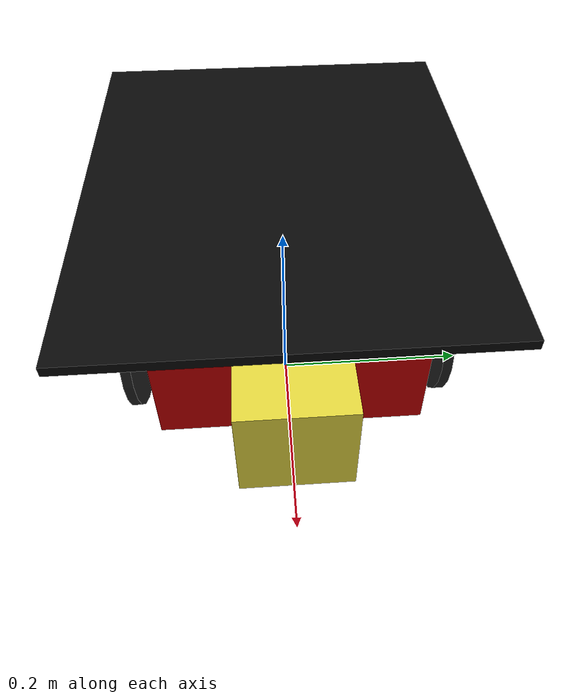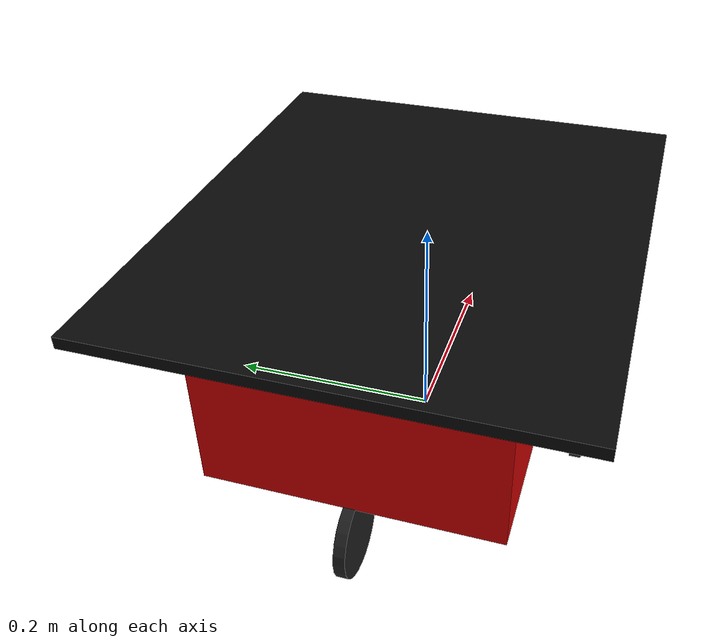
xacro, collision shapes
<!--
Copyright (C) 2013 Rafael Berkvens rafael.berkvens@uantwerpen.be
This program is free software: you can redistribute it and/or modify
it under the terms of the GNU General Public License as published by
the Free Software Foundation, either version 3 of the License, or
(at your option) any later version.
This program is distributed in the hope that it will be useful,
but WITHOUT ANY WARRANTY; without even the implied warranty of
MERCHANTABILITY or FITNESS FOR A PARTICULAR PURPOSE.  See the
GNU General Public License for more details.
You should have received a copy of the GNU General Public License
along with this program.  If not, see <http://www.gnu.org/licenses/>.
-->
<?xml version="1.0"?>

<robot name="pioneer3dx" xmlns:xacro="http://wiki.ros.org/xacro">

<!-- import the pioneer 3dx's wheels -->
<xacro:include filename="$(find p3dx_description)/urdf/pioneer3dx_wheel.xacro" />

<!-- import all gazebo-customization elements, including gazebo colors -->
<xacro:include filename="$(find p3dx_description)/urdf/pioneer3dx.gazebo" />

<!-- import materials to add color to the pioneer in rviz -->
<xacro:include filename="$(find p3dx_description)/urdf/materials.xacro" />

<!-- chassis -->
<link name="base_link">
    <visual>
        <origin xyz="-0.045 0 0.148" rpy="0 0 0" />
        <geometry name="pioneer_geom">
            <mesh filename="package://p3dx_description/meshes/chassis.stl" />
        </geometry>
        <material name="ChassisRed"/>
    </visual>

    <collision>
        <origin xyz="-0.045 0 0.145" rpy="0 0 0" />
        <geometry>
            <box size="0.35 0.25 0.14" />
        </geometry>
    </collision>

</link>
<link name="base_link_dummy">
    <inertial>
        <mass value="3.5" />
        <origin xyz="-0.05 0 0" />
        <inertia ixx="1" ixy="0" ixz="0" iyy="1" iyz="0" izz="1" />
    </inertial>
</link>

<joint name="base_link_inertial_joint" type="fixed">
    <origin xyz="0 0 0" rpy="0 0 0" />
    <parent link="base_link" />
    <child link="base_link_dummy" />
</joint>

<!-- top_plate -->
<link name="top_plate">
    <visual>
        <origin xyz="0 0 0" rpy="0 0 0" />
        <geometry name="top_geom">
            <mesh filename="package://p3dx_description/meshes/top.stl" />
        </geometry>
        <material name="TopBlack"/>
    </visual>

    <collision>
        <origin xyz="0.0 0 0" rpy="0 0 0" />
        <geometry name="pioneer_geom">
            <box size="0.45 0.38 0.01" />
        </geometry>
    </collision>

    <inertial>
        <mass value="0.01" />
        <origin xyz="0 0 0" />
        <inertia ixx="1" ixy="0" ixz="0" iyy="1" iyz="0" izz="1" />
    </inertial>
</link>

<joint name="base_top_joint" type="fixed">
    <origin xyz="-0.045 0 0.234" rpy="0 0 0" />
    <parent link="base_link" />
    <child link="top_plate" />
</joint>

<!-- swivel -->
<link name="swivel">
    <visual>
        <origin xyz="0 0 0" rpy="0 0 0" />
        <geometry name="pioneer_geom">
            <mesh filename="package://p3dx_description/meshes/swivel.stl" />
        </geometry>
        <material name="SwivelGrey"/>
    </visual>

    <collision>
        <origin xyz="0 0 0" rpy="0 0 0" />
        <geometry>
            <box size="0.0001 0.0001 0.0001" />
        </geometry>
    </collision>

    <inertial>
        <mass value="0.1" />
        <origin xyz="0 0 0" />
        <inertia ixx="0.01" ixy="0" ixz="0" iyy="0.01" iyz="0" izz="0.01" />
    </inertial>
</link>

<joint name="base_swivel_joint" type="continuous">
    <origin xyz="-0.185 0 0.055" rpy="0 0 0" />
    <axis xyz="0 0 1" />
    <anchor xyz="0 0 0" />
    <limit effort="100" velocity="100" k_velocity="0" />
    <joint_properties damping="0.0" friction="0.0" />
    <parent link="base_link" />
    <child link="swivel" />
</joint>

<!-- center_hubcap -->
<link name="center_hubcap">
    <visual>
        <origin xyz="0 0 0" rpy="0 0 0" />
        <geometry name="pioneer_geom">
            <mesh filename="package://p3dx_description/meshes/center_hubcap.stl" />
        </geometry>
        <material name="HubcapYellow"/>
    </visual>

    <collision>
        <origin xyz="0 0 0" rpy="0 0 0" />
        <geometry>
            <box size="0.0001 0.0001 0.0001" />
        </geometry>
    </collision>

    <inertial>
        <mass value="0.01" />
        <origin xyz="0 0 0" />
        <inertia ixx="0.012411765597" ixy="-0.000711733678" ixz="0.00050272983"
            iyy="0.015218160428" iyz="-0.000004273467" izz="0.011763977943" />
    </inertial>
</link>

<joint name="swivel_hubcap_joint" type="continuous">
    <origin xyz="-0.026 0 -0.016" rpy="0 0 0" />
    <axis xyz="0 1 0" />
    <anchor xyz="0 0 0" />
    <limit effort="100" velocity="100" k_velocity="0" />
    <joint_properties damping="0.0" friction="0.0" />
    <parent link="swivel" />
    <child link="center_wheel" />
</joint>

<!-- center_wheel -->
<link name="center_wheel">
    <visual>
        <origin xyz="0 0 0" rpy="0 0 0" />
        <geometry name="pioneer_geom">
            <mesh filename="package://p3dx_description/meshes/center_wheel.stl" />
        </geometry>
        <material name="WheelBlack"/>
    </visual>

    <collision>
        <origin xyz="0 0 0" rpy="${-3.1415927/2.0} 0 0" />
        <geometry>
            <cylinder radius="0.0375" length="0.01" />
        </geometry>
    </collision>

    <inertial>
        <mass value="0.1" />
        <origin xyz="0 0 0" />
        <inertia ixx="0.012411765597" ixy="-0.000711733678" ixz="0.00050272983"
            iyy="0.015218160428" iyz="-0.000004273467" izz="0.011763977943" />
    </inertial>
</link>

<joint name="center_wheel_joint" type="fixed">
    <origin xyz="0 0 0" rpy="0 0 0"/>
    <parent link="center_wheel"/>
    <child link="center_hubcap"/>
</joint>

<xacro:p3dx_wheel suffix="left" parent="base_link" reflect="1"/>
<xacro:p3dx_wheel suffix="right" parent="base_link" reflect="-1"/>

<!-- front_sonar -->
<link name="front_sonar">
    <visual>
        <origin rpy="0 0 0" xyz="0 0 0" />
        <geometry name="pioneer_geom">
            <mesh filename="package://p3dx_description/meshes/front_sonar.stl" />
        </geometry>
        <material name="SonarYellow"/>
    </visual>

    <collision>
        <origin rpy="0 0 0" xyz="0 0 0" />
        <geometry>
            <box size="0.0001 0.0001 0.0001" />
        </geometry>
    </collision>

    <inertial>
        <mass value="0.0001" />
        <origin xyz="0 0 0" />
        <inertia ixx="1" ixy="0" ixz="0" iyy="1" iyz="0" izz="1" />
    </inertial>
</link>

<joint name="base_front_joint" type="fixed">
    <origin rpy="0 0 0" xyz="0.109 0 0.209" />
    <parent link="base_link" />
    <child link="front_sonar" />
</joint>

<!-- lms100 laser -->
<link name="lms100">
    <inertial>
        <mass value="1e-5" />
        <origin xyz="0 0 0" rpy="0 0 0" />
        <inertia ixx="1e-6" ixy="0" ixz="0" iyy="1e-6" iyz="0" izz="1e-6" />
    </inertial>

    <visual>
        <origin xyz="0 0 0" rpy="0 0 0" />
        <geometry>
            <mesh filename="package://p3dx_description/meshes/lms100.dae" />
        </geometry>
    </visual>

    <collision>
        <origin xyz="0 0 0" rpy="0 0 0" />
        <geometry>
            <box size="0.1 0.1 0.1" />
        </geometry>
    </collision>
</link>

<joint name="lms100_joint" type="fixed">
    <axis xyz="0 1 0" />
    <origin xyz="0.16 0 0.15" rpy="0 0 0" />
    <parent link="base_link" />
    <child link="lms100" />
</joint>

</robot>

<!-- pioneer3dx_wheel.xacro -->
<robot xmlns:xacro="http://wiki.ros.org/xacro">

<!-- macro to generate pioneer wheels (right/left hubcap + wheel) -->
<xacro:macro name="p3dx_wheel" params="suffix parent reflect">

    <!-- wheel -->
    <link name="p3dx_${suffix}_wheel">
        <visual>
            <origin xyz="0 0 0" rpy="0 0 0" />
            <geometry name="pioneer_geom">
                <mesh filename="package://p3dx_description/meshes/${suffix}_wheel.stl" />
            </geometry>
            <material name="WheelBlack"/>
        </visual>

        <collision>
            <origin xyz="0 0 0" rpy="${-3.1415927/2} 0 0" />
            <geometry>
                <cylinder radius="0.09" length="0.01" />
            </geometry>
        </collision>

        <inertial>
            <mass value="0.5" />
            <origin xyz="0 0 0" />
            <inertia ixx="0.012411765597" ixy="0" ixz="0" iyy="0.015218160428"
                iyz="0" izz="0.011763977943" />
        </inertial>
    </link>

    <joint name="base_${suffix}_hubcap_joint" type="fixed">
        <origin xyz="0 0 0" rpy="0 0 0" />
        <parent link="p3dx_${suffix}_wheel" />
        <child link="p3dx_${suffix}_hubcap" />
    </joint>

    <!-- hubcap -->
    <link name="p3dx_${suffix}_hubcap">
        <inertial>
            <mass value="0.01" />
            <origin xyz="0 0 0" />
            <inertia ixx="0.012411765597" ixy="0" ixz="0" iyy="0.015218160428"
                iyz="0" izz="0.011763977943" />
        </inertial>

        <visual>
            <origin xyz="0 0 0" rpy="0 0 0" />
            <geometry name="pioneer_geom">
                <mesh filename="package://p3dx_description/meshes/${suffix}_hubcap.stl" />
            </geometry>
            <material name="HubcapYellow"/>
        </visual>

        <collision>
            <origin xyz="0 0 0" rpy="0 0 0" />
            <geometry>
                <box size="0.0001 0.0001 0.0001" />
            </geometry>
        </collision>
    </link>

    <joint name="base_${suffix}_wheel_joint" type="continuous">
        <axis xyz="0 1 0" />
        <anchor xyz="0 0 0" />
        <limit effort="100" velocity="100" />
        <joint_properties damping="0.0" friction="0.0" />
        <origin xyz="0 ${reflect*0.158} 0.091" rpy="0 0 0" />
        <parent link="base_link" />
        <child link="p3dx_${suffix}_wheel" />
    </joint>

    <!-- gazebo elements -->
    <transmission name="${parent}_${suffix}_wheel_trans">
        <type>transmission_interface/SimpleTransmission</type>
        <joint name="base_${suffix}_wheel_joint" >
            <hardwareInterface>hardware_interface/EffortJointInterface</hardwareInterface>
        </joint>
        <actuator name="base_${suffix}_wheel_motor">
            <mechanicalReduction>${reflect * 624/35 * 80/19}</mechanicalReduction>
        </actuator>
    </transmission>

    <!-- gazebo colors and properties -->
    <gazebo reference="p3dx_${suffix}_hubcap">
        <material>Gazebo/Yellow</material>
    </gazebo>

    <gazebo reference="p3dx_${suffix}_wheel">
        <material>Gazebo/Black</material>
        <mu1>0.5</mu1>
        <mu2>50.0</mu2>
        <kp>100000000.0</kp>
        <kd>1.0</kd>
    </gazebo>
</xacro:macro>

</robot>

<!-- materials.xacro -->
<!-- NOTE: this materials are for rviz visualization, for gazebo visualization check: pioneer3dx.gazebo -->
<robot name="pioneer3dx" xmlns:xacro="http://wiki.ros.org/xacro">

    <material name="ChassisRed">
        <color rgba="0.8 0.0 0.0 1.0"/>
    </material>

    <material name="SonarYellow">
        <color rgba="0.715 0.583 0.210 1.0"/>
    </material>

    <material name="WheelBlack">
        <color rgba="0.117 0.117 0.117 1.0"/>
    </material>

    <material name="HubcapYellow">
        <color rgba="1.0 0.811 0.151 1.0"/>
    </material>

    <material name="TopBlack">
        <color rgba="0.038 0.038 0.038 1.0"/>
    </material>

    <material name="SwivelGrey">
        <color rgba="0.5 0.5 0.5 1" />
    </material>

</robot>
